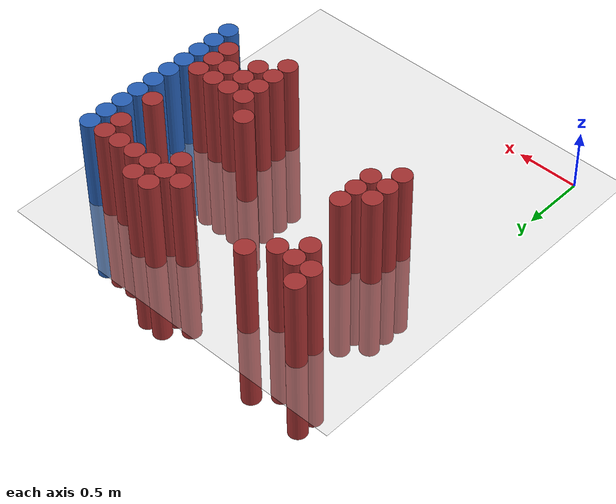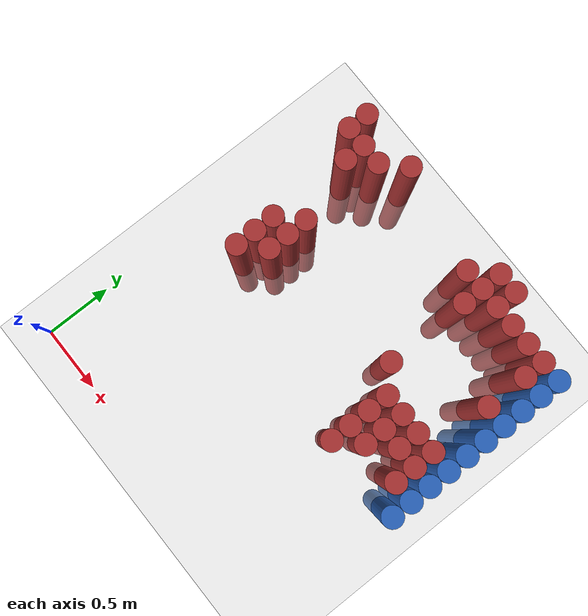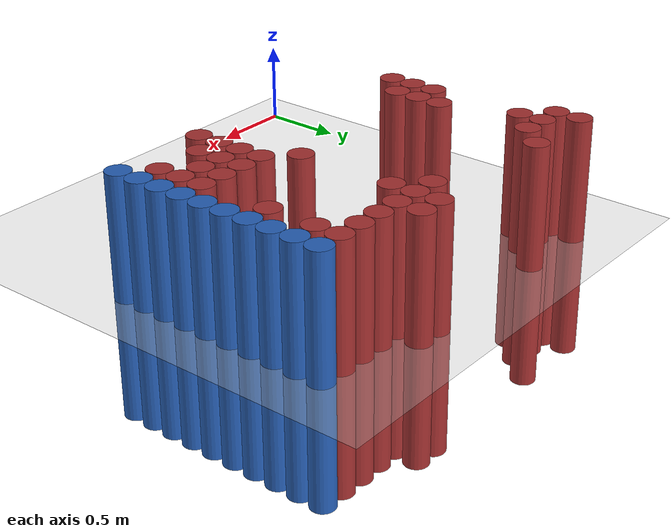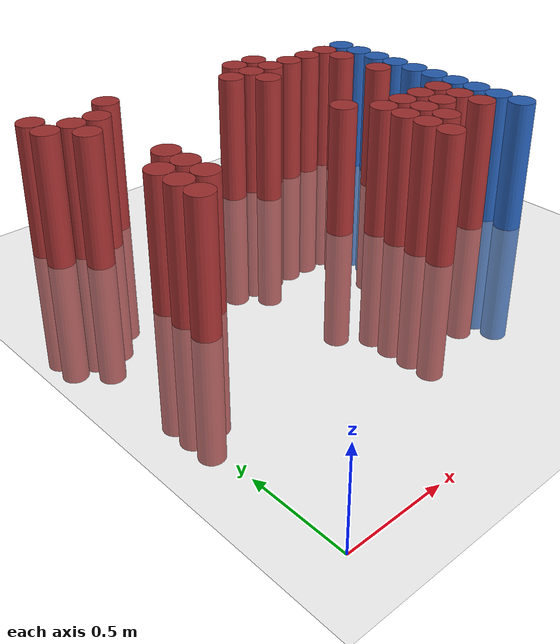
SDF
<sdf version="1.6">
 <world name="default">
  <model name="ground_plane">
   <static>1</static>
   <link name="link">
    <collision name="collision">
     <geometry><plane><normal>0 0 1</normal><size>100 100</size></plane></geometry>
     <surface><friction><ode><mu>100</mu><mu2>50</mu2></ode></friction></surface>
    </collision>
    <visual name="visual">
     <cast_shadows>0</cast_shadows>
     <geometry><plane><normal>0 0 1</normal><size>100 100</size></plane></geometry>
     <material>
      <script><uri>file://media/materials/scripts/gazebo.material</uri><name>Gazebo/Grey</name></script>
     </material>
    </visual>
   </link>
  </model>
  <model name="unit_cylinder_163">
   <static>1</static>
   <pose>0.325000 2.425000 0.000000 0.000000 0.000000 0.000000</pose>
   <link name="link">
    <inertial>
     <mass>1</mass>
     <inertia><ixx>0.145833</ixx><ixy>0</ixy><ixz>0</ixz><iyy>0.145833</iyy><iyz>0</iyz><izz>0.125</izz></inertia>
    </inertial>
    <collision name="collision">
     <geometry><cylinder><radius>0.075000</radius><length>1.5</length></cylinder></geometry>
    </collision>
    <visual name="visual">
     <geometry><cylinder><radius>0.075000</radius><length>1.5</length></cylinder></geometry>
     <material>
      <ambient>0.648000 0.192000 0.192000 1</ambient>
      <diffuse>0.648000 0.192000 0.192000 1</diffuse>
     </material>
     <material>
      <script><name>Gazebo/Grey</name><uri>file://media/materials/scripts/gazebo.material</uri></script>
     </material>
    </visual>
   </link>
  </model>
  <model name="unit_cylinder_164">
   <static>1</static>
   <pose>0.325000 2.575000 0.000000 0.000000 0.000000 0.000000</pose>
   <link name="link">
    <inertial>
     <mass>1</mass>
     <inertia><ixx>0.145833</ixx><ixy>0</ixy><ixz>0</ixz><iyy>0.145833</iyy><iyz>0</iyz><izz>0.125</izz></inertia>
    </inertial>
    <collision name="collision">
     <geometry><cylinder><radius>0.075000</radius><length>1.5</length></cylinder></geometry>
    </collision>
    <visual name="visual">
     <geometry><cylinder><radius>0.075000</radius><length>1.5</length></cylinder></geometry>
     <material>
      <ambient>0.648000 0.192000 0.192000 1</ambient>
      <diffuse>0.648000 0.192000 0.192000 1</diffuse>
     </material>
     <material>
      <script><name>Gazebo/Grey</name><uri>file://media/materials/scripts/gazebo.material</uri></script>
     </material>
    </visual>
   </link>
  </model>
  <model name="unit_cylinder_167">
   <static>1</static>
   <pose>0.475000 1.375000 0.000000 0.000000 0.000000 0.000000</pose>
   <link name="link">
    <inertial>
     <mass>1</mass>
     <inertia><ixx>0.145833</ixx><ixy>0</ixy><ixz>0</ixz><iyy>0.145833</iyy><iyz>0</iyz><izz>0.125</izz></inertia>
    </inertial>
    <collision name="collision">
     <geometry><cylinder><radius>0.075000</radius><length>1.5</length></cylinder></geometry>
    </collision>
    <visual name="visual">
     <geometry><cylinder><radius>0.075000</radius><length>1.5</length></cylinder></geometry>
     <material>
      <ambient>0.648000 0.192000 0.192000 1</ambient>
      <diffuse>0.648000 0.192000 0.192000 1</diffuse>
     </material>
     <material>
      <script><name>Gazebo/Grey</name><uri>file://media/materials/scripts/gazebo.material</uri></script>
     </material>
    </visual>
   </link>
  </model>
  <model name="unit_cylinder_168">
   <static>1</static>
   <pose>0.475000 1.525000 0.000000 0.000000 0.000000 0.000000</pose>
   <link name="link">
    <inertial>
     <mass>1</mass>
     <inertia><ixx>0.145833</ixx><ixy>0</ixy><ixz>0</ixz><iyy>0.145833</iyy><iyz>0</iyz><izz>0.125</izz></inertia>
    </inertial>
    <collision name="collision">
     <geometry><cylinder><radius>0.075000</radius><length>1.5</length></cylinder></geometry>
    </collision>
    <visual name="visual">
     <geometry><cylinder><radius>0.075000</radius><length>1.5</length></cylinder></geometry>
     <material>
      <ambient>0.648000 0.192000 0.192000 1</ambient>
      <diffuse>0.648000 0.192000 0.192000 1</diffuse>
     </material>
     <material>
      <script><name>Gazebo/Grey</name><uri>file://media/materials/scripts/gazebo.material</uri></script>
     </material>
    </visual>
   </link>
  </model>
  <model name="unit_cylinder_169">
   <static>1</static>
   <pose>0.475000 1.675000 0.000000 0.000000 0.000000 0.000000</pose>
   <link name="link">
    <inertial>
     <mass>1</mass>
     <inertia><ixx>0.145833</ixx><ixy>0</ixy><ixz>0</ixz><iyy>0.145833</iyy><iyz>0</iyz><izz>0.125</izz></inertia>
    </inertial>
    <collision name="collision">
     <geometry><cylinder><radius>0.075000</radius><length>1.5</length></cylinder></geometry>
    </collision>
    <visual name="visual">
     <geometry><cylinder><radius>0.075000</radius><length>1.5</length></cylinder></geometry>
     <material>
      <ambient>0.648000 0.192000 0.192000 1</ambient>
      <diffuse>0.648000 0.192000 0.192000 1</diffuse>
     </material>
     <material>
      <script><name>Gazebo/Grey</name><uri>file://media/materials/scripts/gazebo.material</uri></script>
     </material>
    </visual>
   </link>
  </model>
  <model name="unit_cylinder_170">
   <static>1</static>
   <pose>0.475000 2.275000 0.000000 0.000000 0.000000 0.000000</pose>
   <link name="link">
    <inertial>
     <mass>1</mass>
     <inertia><ixx>0.145833</ixx><ixy>0</ixy><ixz>0</ixz><iyy>0.145833</iyy><iyz>0</iyz><izz>0.125</izz></inertia>
    </inertial>
    <collision name="collision">
     <geometry><cylinder><radius>0.075000</radius><length>1.5</length></cylinder></geometry>
    </collision>
    <visual name="visual">
     <geometry><cylinder><radius>0.075000</radius><length>1.5</length></cylinder></geometry>
     <material>
      <ambient>0.648000 0.192000 0.192000 1</ambient>
      <diffuse>0.648000 0.192000 0.192000 1</diffuse>
     </material>
     <material>
      <script><name>Gazebo/Grey</name><uri>file://media/materials/scripts/gazebo.material</uri></script>
     </material>
    </visual>
   </link>
  </model>
  <model name="unit_cylinder_171">
   <static>1</static>
   <pose>0.475000 2.425000 0.000000 0.000000 0.000000 0.000000</pose>
   <link name="link">
    <inertial>
     <mass>1</mass>
     <inertia><ixx>0.145833</ixx><ixy>0</ixy><ixz>0</ixz><iyy>0.145833</iyy><iyz>0</iyz><izz>0.125</izz></inertia>
    </inertial>
    <collision name="collision">
     <geometry><cylinder><radius>0.075000</radius><length>1.5</length></cylinder></geometry>
    </collision>
    <visual name="visual">
     <geometry><cylinder><radius>0.075000</radius><length>1.5</length></cylinder></geometry>
     <material>
      <ambient>0.648000 0.192000 0.192000 1</ambient>
      <diffuse>0.648000 0.192000 0.192000 1</diffuse>
     </material>
     <material>
      <script><name>Gazebo/Grey</name><uri>file://media/materials/scripts/gazebo.material</uri></script>
     </material>
    </visual>
   </link>
  </model>
  <model name="unit_cylinder_172">
   <static>1</static>
   <pose>0.625000 1.525000 0.000000 0.000000 0.000000 0.000000</pose>
   <link name="link">
    <inertial>
     <mass>1</mass>
     <inertia><ixx>0.145833</ixx><ixy>0</ixy><ixz>0</ixz><iyy>0.145833</iyy><iyz>0</iyz><izz>0.125</izz></inertia>
    </inertial>
    <collision name="collision">
     <geometry><cylinder><radius>0.075000</radius><length>1.5</length></cylinder></geometry>
    </collision>
    <visual name="visual">
     <geometry><cylinder><radius>0.075000</radius><length>1.5</length></cylinder></geometry>
     <material>
      <ambient>0.648000 0.192000 0.192000 1</ambient>
      <diffuse>0.648000 0.192000 0.192000 1</diffuse>
     </material>
     <material>
      <script><name>Gazebo/Grey</name><uri>file://media/materials/scripts/gazebo.material</uri></script>
     </material>
    </visual>
   </link>
  </model>
  <model name="unit_cylinder_173">
   <static>1</static>
   <pose>0.625000 1.675000 0.000000 0.000000 0.000000 0.000000</pose>
   <link name="link">
    <inertial>
     <mass>1</mass>
     <inertia><ixx>0.145833</ixx><ixy>0</ixy><ixz>0</ixz><iyy>0.145833</iyy><iyz>0</iyz><izz>0.125</izz></inertia>
    </inertial>
    <collision name="collision">
     <geometry><cylinder><radius>0.075000</radius><length>1.5</length></cylinder></geometry>
    </collision>
    <visual name="visual">
     <geometry><cylinder><radius>0.075000</radius><length>1.5</length></cylinder></geometry>
     <material>
      <ambient>0.648000 0.192000 0.192000 1</ambient>
      <diffuse>0.648000 0.192000 0.192000 1</diffuse>
     </material>
     <material>
      <script><name>Gazebo/Grey</name><uri>file://media/materials/scripts/gazebo.material</uri></script>
     </material>
    </visual>
   </link>
  </model>
  <model name="unit_cylinder_174">
   <static>1</static>
   <pose>0.625000 1.825000 0.000000 0.000000 0.000000 0.000000</pose>
   <link name="link">
    <inertial>
     <mass>1</mass>
     <inertia><ixx>0.145833</ixx><ixy>0</ixy><ixz>0</ixz><iyy>0.145833</iyy><iyz>0</iyz><izz>0.125</izz></inertia>
    </inertial>
    <collision name="collision">
     <geometry><cylinder><radius>0.075000</radius><length>1.5</length></cylinder></geometry>
    </collision>
    <visual name="visual">
     <geometry><cylinder><radius>0.075000</radius><length>1.5</length></cylinder></geometry>
     <material>
      <ambient>0.648000 0.192000 0.192000 1</ambient>
      <diffuse>0.648000 0.192000 0.192000 1</diffuse>
     </material>
     <material>
      <script><name>Gazebo/Grey</name><uri>file://media/materials/scripts/gazebo.material</uri></script>
     </material>
    </visual>
   </link>
  </model>
  <model name="unit_cylinder_175">
   <static>1</static>
   <pose>0.625000 2.425000 0.000000 0.000000 0.000000 0.000000</pose>
   <link name="link">
    <inertial>
     <mass>1</mass>
     <inertia><ixx>0.145833</ixx><ixy>0</ixy><ixz>0</ixz><iyy>0.145833</iyy><iyz>0</iyz><izz>0.125</izz></inertia>
    </inertial>
    <collision name="collision">
     <geometry><cylinder><radius>0.075000</radius><length>1.5</length></cylinder></geometry>
    </collision>
    <visual name="visual">
     <geometry><cylinder><radius>0.075000</radius><length>1.5</length></cylinder></geometry>
     <material>
      <ambient>0.648000 0.192000 0.192000 1</ambient>
      <diffuse>0.648000 0.192000 0.192000 1</diffuse>
     </material>
     <material>
      <script><name>Gazebo/Grey</name><uri>file://media/materials/scripts/gazebo.material</uri></script>
     </material>
    </visual>
   </link>
  </model>
  <model name="unit_cylinder_176">
   <static>1</static>
   <pose>0.775000 2.575000 0.000000 0.000000 0.000000 0.000000</pose>
   <link name="link">
    <inertial>
     <mass>1</mass>
     <inertia><ixx>0.145833</ixx><ixy>0</ixy><ixz>0</ixz><iyy>0.145833</iyy><iyz>0</iyz><izz>0.125</izz></inertia>
    </inertial>
    <collision name="collision">
     <geometry><cylinder><radius>0.075000</radius><length>1.5</length></cylinder></geometry>
    </collision>
    <visual name="visual">
     <geometry><cylinder><radius>0.075000</radius><length>1.5</length></cylinder></geometry>
     <material>
      <ambient>0.648000 0.192000 0.192000 1</ambient>
      <diffuse>0.648000 0.192000 0.192000 1</diffuse>
     </material>
     <material>
      <script><name>Gazebo/Grey</name><uri>file://media/materials/scripts/gazebo.material</uri></script>
     </material>
    </visual>
   </link>
  </model>
  <model name="unit_cylinder_191">
   <static>1</static>
   <pose>1.525000 2.425000 0.000000 0.000000 0.000000 0.000000</pose>
   <link name="link">
    <inertial>
     <mass>1</mass>
     <inertia><ixx>0.145833</ixx><ixy>0</ixy><ixz>0</ixz><iyy>0.145833</iyy><iyz>0</iyz><izz>0.125</izz></inertia>
    </inertial>
    <collision name="collision">
     <geometry><cylinder><radius>0.075000</radius><length>1.5</length></cylinder></geometry>
    </collision>
    <visual name="visual">
     <geometry><cylinder><radius>0.075000</radius><length>1.5</length></cylinder></geometry>
     <material>
      <ambient>0.648000 0.192000 0.192000 1</ambient>
      <diffuse>0.648000 0.192000 0.192000 1</diffuse>
     </material>
     <material>
      <script><name>Gazebo/Grey</name><uri>file://media/materials/scripts/gazebo.material</uri></script>
     </material>
    </visual>
   </link>
  </model>
  <model name="unit_cylinder_195">
   <static>1</static>
   <pose>1.675000 1.675000 0.000000 0.000000 0.000000 0.000000</pose>
   <link name="link">
    <inertial>
     <mass>1</mass>
     <inertia><ixx>0.145833</ixx><ixy>0</ixy><ixz>0</ixz><iyy>0.145833</iyy><iyz>0</iyz><izz>0.125</izz></inertia>
    </inertial>
    <collision name="collision">
     <geometry><cylinder><radius>0.075000</radius><length>1.5</length></cylinder></geometry>
    </collision>
    <visual name="visual">
     <geometry><cylinder><radius>0.075000</radius><length>1.5</length></cylinder></geometry>
     <material>
      <ambient>0.648000 0.192000 0.192000 1</ambient>
      <diffuse>0.648000 0.192000 0.192000 1</diffuse>
     </material>
     <material>
      <script><name>Gazebo/Grey</name><uri>file://media/materials/scripts/gazebo.material</uri></script>
     </material>
    </visual>
   </link>
  </model>
  <model name="unit_cylinder_196">
   <static>1</static>
   <pose>1.675000 2.275000 0.000000 0.000000 0.000000 0.000000</pose>
   <link name="link">
    <inertial>
     <mass>1</mass>
     <inertia><ixx>0.145833</ixx><ixy>0</ixy><ixz>0</ixz><iyy>0.145833</iyy><iyz>0</iyz><izz>0.125</izz></inertia>
    </inertial>
    <collision name="collision">
     <geometry><cylinder><radius>0.075000</radius><length>1.5</length></cylinder></geometry>
    </collision>
    <visual name="visual">
     <geometry><cylinder><radius>0.075000</radius><length>1.5</length></cylinder></geometry>
     <material>
      <ambient>0.648000 0.192000 0.192000 1</ambient>
      <diffuse>0.648000 0.192000 0.192000 1</diffuse>
     </material>
     <material>
      <script><name>Gazebo/Grey</name><uri>file://media/materials/scripts/gazebo.material</uri></script>
     </material>
    </visual>
   </link>
  </model>
  <model name="unit_cylinder_197">
   <static>1</static>
   <pose>1.675000 2.425000 0.000000 0.000000 0.000000 0.000000</pose>
   <link name="link">
    <inertial>
     <mass>1</mass>
     <inertia><ixx>0.145833</ixx><ixy>0</ixy><ixz>0</ixz><iyy>0.145833</iyy><iyz>0</iyz><izz>0.125</izz></inertia>
    </inertial>
    <collision name="collision">
     <geometry><cylinder><radius>0.075000</radius><length>1.5</length></cylinder></geometry>
    </collision>
    <visual name="visual">
     <geometry><cylinder><radius>0.075000</radius><length>1.5</length></cylinder></geometry>
     <material>
      <ambient>0.648000 0.192000 0.192000 1</ambient>
      <diffuse>0.648000 0.192000 0.192000 1</diffuse>
     </material>
     <material>
      <script><name>Gazebo/Grey</name><uri>file://media/materials/scripts/gazebo.material</uri></script>
     </material>
    </visual>
   </link>
  </model>
  <model name="unit_cylinder_198">
   <static>1</static>
   <pose>1.675000 2.575000 0.000000 0.000000 0.000000 0.000000</pose>
   <link name="link">
    <inertial>
     <mass>1</mass>
     <inertia><ixx>0.145833</ixx><ixy>0</ixy><ixz>0</ixz><iyy>0.145833</iyy><iyz>0</iyz><izz>0.125</izz></inertia>
    </inertial>
    <collision name="collision">
     <geometry><cylinder><radius>0.075000</radius><length>1.5</length></cylinder></geometry>
    </collision>
    <visual name="visual">
     <geometry><cylinder><radius>0.075000</radius><length>1.5</length></cylinder></geometry>
     <material>
      <ambient>0.648000 0.192000 0.192000 1</ambient>
      <diffuse>0.648000 0.192000 0.192000 1</diffuse>
     </material>
     <material>
      <script><name>Gazebo/Grey</name><uri>file://media/materials/scripts/gazebo.material</uri></script>
     </material>
    </visual>
   </link>
  </model>
  <model name="unit_cylinder_205">
   <static>1</static>
   <pose>1.825000 1.075000 0.000000 0.000000 0.000000 0.000000</pose>
   <link name="link">
    <inertial>
     <mass>1</mass>
     <inertia><ixx>0.145833</ixx><ixy>0</ixy><ixz>0</ixz><iyy>0.145833</iyy><iyz>0</iyz><izz>0.125</izz></inertia>
    </inertial>
    <collision name="collision">
     <geometry><cylinder><radius>0.075000</radius><length>1.5</length></cylinder></geometry>
    </collision>
    <visual name="visual">
     <geometry><cylinder><radius>0.075000</radius><length>1.5</length></cylinder></geometry>
     <material>
      <ambient>0.648000 0.192000 0.192000 1</ambient>
      <diffuse>0.648000 0.192000 0.192000 1</diffuse>
     </material>
     <material>
      <script><name>Gazebo/Grey</name><uri>file://media/materials/scripts/gazebo.material</uri></script>
     </material>
    </visual>
   </link>
  </model>
  <model name="unit_cylinder_206">
   <static>1</static>
   <pose>1.825000 1.225000 0.000000 0.000000 0.000000 0.000000</pose>
   <link name="link">
    <inertial>
     <mass>1</mass>
     <inertia><ixx>0.145833</ixx><ixy>0</ixy><ixz>0</ixz><iyy>0.145833</iyy><iyz>0</iyz><izz>0.125</izz></inertia>
    </inertial>
    <collision name="collision">
     <geometry><cylinder><radius>0.075000</radius><length>1.5</length></cylinder></geometry>
    </collision>
    <visual name="visual">
     <geometry><cylinder><radius>0.075000</radius><length>1.5</length></cylinder></geometry>
     <material>
      <ambient>0.648000 0.192000 0.192000 1</ambient>
      <diffuse>0.648000 0.192000 0.192000 1</diffuse>
     </material>
     <material>
      <script><name>Gazebo/Grey</name><uri>file://media/materials/scripts/gazebo.material</uri></script>
     </material>
    </visual>
   </link>
  </model>
  <model name="unit_cylinder_207">
   <static>1</static>
   <pose>1.825000 1.375000 0.000000 0.000000 0.000000 0.000000</pose>
   <link name="link">
    <inertial>
     <mass>1</mass>
     <inertia><ixx>0.145833</ixx><ixy>0</ixy><ixz>0</ixz><iyy>0.145833</iyy><iyz>0</iyz><izz>0.125</izz></inertia>
    </inertial>
    <collision name="collision">
     <geometry><cylinder><radius>0.075000</radius><length>1.5</length></cylinder></geometry>
    </collision>
    <visual name="visual">
     <geometry><cylinder><radius>0.075000</radius><length>1.5</length></cylinder></geometry>
     <material>
      <ambient>0.648000 0.192000 0.192000 1</ambient>
      <diffuse>0.648000 0.192000 0.192000 1</diffuse>
     </material>
     <material>
      <script><name>Gazebo/Grey</name><uri>file://media/materials/scripts/gazebo.material</uri></script>
     </material>
    </visual>
   </link>
  </model>
  <model name="unit_cylinder_208">
   <static>1</static>
   <pose>1.825000 1.525000 0.000000 0.000000 0.000000 0.000000</pose>
   <link name="link">
    <inertial>
     <mass>1</mass>
     <inertia><ixx>0.145833</ixx><ixy>0</ixy><ixz>0</ixz><iyy>0.145833</iyy><iyz>0</iyz><izz>0.125</izz></inertia>
    </inertial>
    <collision name="collision">
     <geometry><cylinder><radius>0.075000</radius><length>1.5</length></cylinder></geometry>
    </collision>
    <visual name="visual">
     <geometry><cylinder><radius>0.075000</radius><length>1.5</length></cylinder></geometry>
     <material>
      <ambient>0.648000 0.192000 0.192000 1</ambient>
      <diffuse>0.648000 0.192000 0.192000 1</diffuse>
     </material>
     <material>
      <script><name>Gazebo/Grey</name><uri>file://media/materials/scripts/gazebo.material</uri></script>
     </material>
    </visual>
   </link>
  </model>
  <model name="unit_cylinder_209">
   <static>1</static>
   <pose>1.825000 2.425000 0.000000 0.000000 0.000000 0.000000</pose>
   <link name="link">
    <inertial>
     <mass>1</mass>
     <inertia><ixx>0.145833</ixx><ixy>0</ixy><ixz>0</ixz><iyy>0.145833</iyy><iyz>0</iyz><izz>0.125</izz></inertia>
    </inertial>
    <collision name="collision">
     <geometry><cylinder><radius>0.075000</radius><length>1.5</length></cylinder></geometry>
    </collision>
    <visual name="visual">
     <geometry><cylinder><radius>0.075000</radius><length>1.5</length></cylinder></geometry>
     <material>
      <ambient>0.648000 0.192000 0.192000 1</ambient>
      <diffuse>0.648000 0.192000 0.192000 1</diffuse>
     </material>
     <material>
      <script><name>Gazebo/Grey</name><uri>file://media/materials/scripts/gazebo.material</uri></script>
     </material>
    </visual>
   </link>
  </model>
  <model name="unit_cylinder_210">
   <static>1</static>
   <pose>1.825000 2.575000 0.000000 0.000000 0.000000 0.000000</pose>
   <link name="link">
    <inertial>
     <mass>1</mass>
     <inertia><ixx>0.145833</ixx><ixy>0</ixy><ixz>0</ixz><iyy>0.145833</iyy><iyz>0</iyz><izz>0.125</izz></inertia>
    </inertial>
    <collision name="collision">
     <geometry><cylinder><radius>0.075000</radius><length>1.5</length></cylinder></geometry>
    </collision>
    <visual name="visual">
     <geometry><cylinder><radius>0.075000</radius><length>1.5</length></cylinder></geometry>
     <material>
      <ambient>0.648000 0.192000 0.192000 1</ambient>
      <diffuse>0.648000 0.192000 0.192000 1</diffuse>
     </material>
     <material>
      <script><name>Gazebo/Grey</name><uri>file://media/materials/scripts/gazebo.material</uri></script>
     </material>
    </visual>
   </link>
  </model>
  <model name="unit_cylinder_214">
   <static>1</static>
   <pose>1.975000 1.225000 0.000000 0.000000 0.000000 0.000000</pose>
   <link name="link">
    <inertial>
     <mass>1</mass>
     <inertia><ixx>0.145833</ixx><ixy>0</ixy><ixz>0</ixz><iyy>0.145833</iyy><iyz>0</iyz><izz>0.125</izz></inertia>
    </inertial>
    <collision name="collision">
     <geometry><cylinder><radius>0.075000</radius><length>1.5</length></cylinder></geometry>
    </collision>
    <visual name="visual">
     <geometry><cylinder><radius>0.075000</radius><length>1.5</length></cylinder></geometry>
     <material>
      <ambient>0.648000 0.192000 0.192000 1</ambient>
      <diffuse>0.648000 0.192000 0.192000 1</diffuse>
     </material>
     <material>
      <script><name>Gazebo/Grey</name><uri>file://media/materials/scripts/gazebo.material</uri></script>
     </material>
    </visual>
   </link>
  </model>
  <model name="unit_cylinder_215">
   <static>1</static>
   <pose>1.975000 1.375000 0.000000 0.000000 0.000000 0.000000</pose>
   <link name="link">
    <inertial>
     <mass>1</mass>
     <inertia><ixx>0.145833</ixx><ixy>0</ixy><ixz>0</ixz><iyy>0.145833</iyy><iyz>0</iyz><izz>0.125</izz></inertia>
    </inertial>
    <collision name="collision">
     <geometry><cylinder><radius>0.075000</radius><length>1.5</length></cylinder></geometry>
    </collision>
    <visual name="visual">
     <geometry><cylinder><radius>0.075000</radius><length>1.5</length></cylinder></geometry>
     <material>
      <ambient>0.648000 0.192000 0.192000 1</ambient>
      <diffuse>0.648000 0.192000 0.192000 1</diffuse>
     </material>
     <material>
      <script><name>Gazebo/Grey</name><uri>file://media/materials/scripts/gazebo.material</uri></script>
     </material>
    </visual>
   </link>
  </model>
  <model name="unit_cylinder_216">
   <static>1</static>
   <pose>1.975000 1.525000 0.000000 0.000000 0.000000 0.000000</pose>
   <link name="link">
    <inertial>
     <mass>1</mass>
     <inertia><ixx>0.145833</ixx><ixy>0</ixy><ixz>0</ixz><iyy>0.145833</iyy><iyz>0</iyz><izz>0.125</izz></inertia>
    </inertial>
    <collision name="collision">
     <geometry><cylinder><radius>0.075000</radius><length>1.5</length></cylinder></geometry>
    </collision>
    <visual name="visual">
     <geometry><cylinder><radius>0.075000</radius><length>1.5</length></cylinder></geometry>
     <material>
      <ambient>0.648000 0.192000 0.192000 1</ambient>
      <diffuse>0.648000 0.192000 0.192000 1</diffuse>
     </material>
     <material>
      <script><name>Gazebo/Grey</name><uri>file://media/materials/scripts/gazebo.material</uri></script>
     </material>
    </visual>
   </link>
  </model>
  <model name="unit_cylinder_217">
   <static>1</static>
   <pose>1.975000 2.425000 0.000000 0.000000 0.000000 0.000000</pose>
   <link name="link">
    <inertial>
     <mass>1</mass>
     <inertia><ixx>0.145833</ixx><ixy>0</ixy><ixz>0</ixz><iyy>0.145833</iyy><iyz>0</iyz><izz>0.125</izz></inertia>
    </inertial>
    <collision name="collision">
     <geometry><cylinder><radius>0.075000</radius><length>1.5</length></cylinder></geometry>
    </collision>
    <visual name="visual">
     <geometry><cylinder><radius>0.075000</radius><length>1.5</length></cylinder></geometry>
     <material>
      <ambient>0.648000 0.192000 0.192000 1</ambient>
      <diffuse>0.648000 0.192000 0.192000 1</diffuse>
     </material>
     <material>
      <script><name>Gazebo/Grey</name><uri>file://media/materials/scripts/gazebo.material</uri></script>
     </material>
    </visual>
   </link>
  </model>
  <model name="unit_cylinder_223">
   <static>1</static>
   <pose>2.125000 1.375000 0.000000 0.000000 0.000000 0.000000</pose>
   <link name="link">
    <inertial>
     <mass>1</mass>
     <inertia><ixx>0.145833</ixx><ixy>0</ixy><ixz>0</ixz><iyy>0.145833</iyy><iyz>0</iyz><izz>0.125</izz></inertia>
    </inertial>
    <collision name="collision">
     <geometry><cylinder><radius>0.075000</radius><length>1.5</length></cylinder></geometry>
    </collision>
    <visual name="visual">
     <geometry><cylinder><radius>0.075000</radius><length>1.5</length></cylinder></geometry>
     <material>
      <ambient>0.648000 0.192000 0.192000 1</ambient>
      <diffuse>0.648000 0.192000 0.192000 1</diffuse>
     </material>
     <material>
      <script><name>Gazebo/Grey</name><uri>file://media/materials/scripts/gazebo.material</uri></script>
     </material>
    </visual>
   </link>
  </model>
  <model name="unit_cylinder_224">
   <static>1</static>
   <pose>2.125000 1.525000 0.000000 0.000000 0.000000 0.000000</pose>
   <link name="link">
    <inertial>
     <mass>1</mass>
     <inertia><ixx>0.145833</ixx><ixy>0</ixy><ixz>0</ixz><iyy>0.145833</iyy><iyz>0</iyz><izz>0.125</izz></inertia>
    </inertial>
    <collision name="collision">
     <geometry><cylinder><radius>0.075000</radius><length>1.5</length></cylinder></geometry>
    </collision>
    <visual name="visual">
     <geometry><cylinder><radius>0.075000</radius><length>1.5</length></cylinder></geometry>
     <material>
      <ambient>0.648000 0.192000 0.192000 1</ambient>
      <diffuse>0.648000 0.192000 0.192000 1</diffuse>
     </material>
     <material>
      <script><name>Gazebo/Grey</name><uri>file://media/materials/scripts/gazebo.material</uri></script>
     </material>
    </visual>
   </link>
  </model>
  <model name="unit_cylinder_225">
   <static>1</static>
   <pose>2.125000 2.425000 0.000000 0.000000 0.000000 0.000000</pose>
   <link name="link">
    <inertial>
     <mass>1</mass>
     <inertia><ixx>0.145833</ixx><ixy>0</ixy><ixz>0</ixz><iyy>0.145833</iyy><iyz>0</iyz><izz>0.125</izz></inertia>
    </inertial>
    <collision name="collision">
     <geometry><cylinder><radius>0.075000</radius><length>1.5</length></cylinder></geometry>
    </collision>
    <visual name="visual">
     <geometry><cylinder><radius>0.075000</radius><length>1.5</length></cylinder></geometry>
     <material>
      <ambient>0.648000 0.192000 0.192000 1</ambient>
      <diffuse>0.648000 0.192000 0.192000 1</diffuse>
     </material>
     <material>
      <script><name>Gazebo/Grey</name><uri>file://media/materials/scripts/gazebo.material</uri></script>
     </material>
    </visual>
   </link>
  </model>
  <model name="unit_cylinder_230">
   <static>1</static>
   <pose>2.275000 1.225000 0.000000 0.000000 0.000000 0.000000</pose>
   <link name="link">
    <inertial>
     <mass>1</mass>
     <inertia><ixx>0.145833</ixx><ixy>0</ixy><ixz>0</ixz><iyy>0.145833</iyy><iyz>0</iyz><izz>0.125</izz></inertia>
    </inertial>
    <collision name="collision">
     <geometry><cylinder><radius>0.075000</radius><length>1.5</length></cylinder></geometry>
    </collision>
    <visual name="visual">
     <geometry><cylinder><radius>0.075000</radius><length>1.5</length></cylinder></geometry>
     <material>
      <ambient>0.648000 0.192000 0.192000 1</ambient>
      <diffuse>0.648000 0.192000 0.192000 1</diffuse>
     </material>
     <material>
      <script><name>Gazebo/Grey</name><uri>file://media/materials/scripts/gazebo.material</uri></script>
     </material>
    </visual>
   </link>
  </model>
  <model name="unit_cylinder_231">
   <static>1</static>
   <pose>2.275000 1.375000 0.000000 0.000000 0.000000 0.000000</pose>
   <link name="link">
    <inertial>
     <mass>1</mass>
     <inertia><ixx>0.145833</ixx><ixy>0</ixy><ixz>0</ixz><iyy>0.145833</iyy><iyz>0</iyz><izz>0.125</izz></inertia>
    </inertial>
    <collision name="collision">
     <geometry><cylinder><radius>0.075000</radius><length>1.5</length></cylinder></geometry>
    </collision>
    <visual name="visual">
     <geometry><cylinder><radius>0.075000</radius><length>1.5</length></cylinder></geometry>
     <material>
      <ambient>0.648000 0.192000 0.192000 1</ambient>
      <diffuse>0.648000 0.192000 0.192000 1</diffuse>
     </material>
     <material>
      <script><name>Gazebo/Grey</name><uri>file://media/materials/scripts/gazebo.material</uri></script>
     </material>
    </visual>
   </link>
  </model>
  <model name="unit_cylinder_232">
   <static>1</static>
   <pose>2.275000 1.525000 0.000000 0.000000 0.000000 0.000000</pose>
   <link name="link">
    <inertial>
     <mass>1</mass>
     <inertia><ixx>0.145833</ixx><ixy>0</ixy><ixz>0</ixz><iyy>0.145833</iyy><iyz>0</iyz><izz>0.125</izz></inertia>
    </inertial>
    <collision name="collision">
     <geometry><cylinder><radius>0.075000</radius><length>1.5</length></cylinder></geometry>
    </collision>
    <visual name="visual">
     <geometry><cylinder><radius>0.075000</radius><length>1.5</length></cylinder></geometry>
     <material>
      <ambient>0.648000 0.192000 0.192000 1</ambient>
      <diffuse>0.648000 0.192000 0.192000 1</diffuse>
     </material>
     <material>
      <script><name>Gazebo/Grey</name><uri>file://media/materials/scripts/gazebo.material</uri></script>
     </material>
    </visual>
   </link>
  </model>
  <model name="unit_cylinder_233">
   <static>1</static>
   <pose>2.275000 1.975000 0.000000 0.000000 0.000000 0.000000</pose>
   <link name="link">
    <inertial>
     <mass>1</mass>
     <inertia><ixx>0.145833</ixx><ixy>0</ixy><ixz>0</ixz><iyy>0.145833</iyy><iyz>0</iyz><izz>0.125</izz></inertia>
    </inertial>
    <collision name="collision">
     <geometry><cylinder><radius>0.075000</radius><length>1.5</length></cylinder></geometry>
    </collision>
    <visual name="visual">
     <geometry><cylinder><radius>0.075000</radius><length>1.5</length></cylinder></geometry>
     <material>
      <ambient>0.648000 0.192000 0.192000 1</ambient>
      <diffuse>0.648000 0.192000 0.192000 1</diffuse>
     </material>
     <material>
      <script><name>Gazebo/Grey</name><uri>file://media/materials/scripts/gazebo.material</uri></script>
     </material>
    </visual>
   </link>
  </model>
  <model name="unit_cylinder_234">
   <static>1</static>
   <pose>2.275000 2.275000 0.000000 0.000000 0.000000 0.000000</pose>
   <link name="link">
    <inertial>
     <mass>1</mass>
     <inertia><ixx>0.145833</ixx><ixy>0</ixy><ixz>0</ixz><iyy>0.145833</iyy><iyz>0</iyz><izz>0.125</izz></inertia>
    </inertial>
    <collision name="collision">
     <geometry><cylinder><radius>0.075000</radius><length>1.5</length></cylinder></geometry>
    </collision>
    <visual name="visual">
     <geometry><cylinder><radius>0.075000</radius><length>1.5</length></cylinder></geometry>
     <material>
      <ambient>0.648000 0.192000 0.192000 1</ambient>
      <diffuse>0.648000 0.192000 0.192000 1</diffuse>
     </material>
     <material>
      <script><name>Gazebo/Grey</name><uri>file://media/materials/scripts/gazebo.material</uri></script>
     </material>
    </visual>
   </link>
  </model>
  <model name="unit_cylinder_235">
   <static>1</static>
   <pose>2.275000 2.425000 0.000000 0.000000 0.000000 0.000000</pose>
   <link name="link">
    <inertial>
     <mass>1</mass>
     <inertia><ixx>0.145833</ixx><ixy>0</ixy><ixz>0</ixz><iyy>0.145833</iyy><iyz>0</iyz><izz>0.125</izz></inertia>
    </inertial>
    <collision name="collision">
     <geometry><cylinder><radius>0.075000</radius><length>1.5</length></cylinder></geometry>
    </collision>
    <visual name="visual">
     <geometry><cylinder><radius>0.075000</radius><length>1.5</length></cylinder></geometry>
     <material>
      <ambient>0.648000 0.192000 0.192000 1</ambient>
      <diffuse>0.648000 0.192000 0.192000 1</diffuse>
     </material>
     <material>
      <script><name>Gazebo/Grey</name><uri>file://media/materials/scripts/gazebo.material</uri></script>
     </material>
    </visual>
   </link>
  </model>
  <model name="unit_cylinder_254">
   <static>1</static>
   <pose>2.425000 1.075000 0.000000 0.000000 0.000000 0.000000</pose>
   <link name="link">
    <inertial>
     <mass>1</mass>
     <inertia><ixx>0.145833</ixx><ixy>0</ixy><ixz>0</ixz><iyy>0.145833</iyy><iyz>0</iyz><izz>0.125</izz></inertia>
    </inertial>
    <collision name="collision">
     <geometry><cylinder><radius>0.075000</radius><length>1.5</length></cylinder></geometry>
    </collision>
    <visual name="visual">
     <geometry><cylinder><radius>0.075000</radius><length>1.5</length></cylinder></geometry>
     <material>
      <ambient>0.152000 0.379000 0.720000 1</ambient>
      <diffuse>0.152000 0.379000 0.720000 1</diffuse>
     </material>
     <material>
      <script><name>Gazebo/Grey</name><uri>file://media/materials/scripts/gazebo.material</uri></script>
     </material>
    </visual>
   </link>
  </model>
  <model name="unit_cylinder_255">
   <static>1</static>
   <pose>2.425000 1.225000 0.000000 0.000000 0.000000 0.000000</pose>
   <link name="link">
    <inertial>
     <mass>1</mass>
     <inertia><ixx>0.145833</ixx><ixy>0</ixy><ixz>0</ixz><iyy>0.145833</iyy><iyz>0</iyz><izz>0.125</izz></inertia>
    </inertial>
    <collision name="collision">
     <geometry><cylinder><radius>0.075000</radius><length>1.5</length></cylinder></geometry>
    </collision>
    <visual name="visual">
     <geometry><cylinder><radius>0.075000</radius><length>1.5</length></cylinder></geometry>
     <material>
      <ambient>0.152000 0.379000 0.720000 1</ambient>
      <diffuse>0.152000 0.379000 0.720000 1</diffuse>
     </material>
     <material>
      <script><name>Gazebo/Grey</name><uri>file://media/materials/scripts/gazebo.material</uri></script>
     </material>
    </visual>
   </link>
  </model>
  <model name="unit_cylinder_256">
   <static>1</static>
   <pose>2.425000 1.375000 0.000000 0.000000 0.000000 0.000000</pose>
   <link name="link">
    <inertial>
     <mass>1</mass>
     <inertia><ixx>0.145833</ixx><ixy>0</ixy><ixz>0</ixz><iyy>0.145833</iyy><iyz>0</iyz><izz>0.125</izz></inertia>
    </inertial>
    <collision name="collision">
     <geometry><cylinder><radius>0.075000</radius><length>1.5</length></cylinder></geometry>
    </collision>
    <visual name="visual">
     <geometry><cylinder><radius>0.075000</radius><length>1.5</length></cylinder></geometry>
     <material>
      <ambient>0.152000 0.379000 0.720000 1</ambient>
      <diffuse>0.152000 0.379000 0.720000 1</diffuse>
     </material>
     <material>
      <script><name>Gazebo/Grey</name><uri>file://media/materials/scripts/gazebo.material</uri></script>
     </material>
    </visual>
   </link>
  </model>
  <model name="unit_cylinder_257">
   <static>1</static>
   <pose>2.425000 1.525000 0.000000 0.000000 0.000000 0.000000</pose>
   <link name="link">
    <inertial>
     <mass>1</mass>
     <inertia><ixx>0.145833</ixx><ixy>0</ixy><ixz>0</ixz><iyy>0.145833</iyy><iyz>0</iyz><izz>0.125</izz></inertia>
    </inertial>
    <collision name="collision">
     <geometry><cylinder><radius>0.075000</radius><length>1.5</length></cylinder></geometry>
    </collision>
    <visual name="visual">
     <geometry><cylinder><radius>0.075000</radius><length>1.5</length></cylinder></geometry>
     <material>
      <ambient>0.152000 0.379000 0.720000 1</ambient>
      <diffuse>0.152000 0.379000 0.720000 1</diffuse>
     </material>
     <material>
      <script><name>Gazebo/Grey</name><uri>file://media/materials/scripts/gazebo.material</uri></script>
     </material>
    </visual>
   </link>
  </model>
  <model name="unit_cylinder_258">
   <static>1</static>
   <pose>2.425000 1.675000 0.000000 0.000000 0.000000 0.000000</pose>
   <link name="link">
    <inertial>
     <mass>1</mass>
     <inertia><ixx>0.145833</ixx><ixy>0</ixy><ixz>0</ixz><iyy>0.145833</iyy><iyz>0</iyz><izz>0.125</izz></inertia>
    </inertial>
    <collision name="collision">
     <geometry><cylinder><radius>0.075000</radius><length>1.5</length></cylinder></geometry>
    </collision>
    <visual name="visual">
     <geometry><cylinder><radius>0.075000</radius><length>1.5</length></cylinder></geometry>
     <material>
      <ambient>0.152000 0.379000 0.720000 1</ambient>
      <diffuse>0.152000 0.379000 0.720000 1</diffuse>
     </material>
     <material>
      <script><name>Gazebo/Grey</name><uri>file://media/materials/scripts/gazebo.material</uri></script>
     </material>
    </visual>
   </link>
  </model>
  <model name="unit_cylinder_259">
   <static>1</static>
   <pose>2.425000 1.825000 0.000000 0.000000 0.000000 0.000000</pose>
   <link name="link">
    <inertial>
     <mass>1</mass>
     <inertia><ixx>0.145833</ixx><ixy>0</ixy><ixz>0</ixz><iyy>0.145833</iyy><iyz>0</iyz><izz>0.125</izz></inertia>
    </inertial>
    <collision name="collision">
     <geometry><cylinder><radius>0.075000</radius><length>1.5</length></cylinder></geometry>
    </collision>
    <visual name="visual">
     <geometry><cylinder><radius>0.075000</radius><length>1.5</length></cylinder></geometry>
     <material>
      <ambient>0.152000 0.379000 0.720000 1</ambient>
      <diffuse>0.152000 0.379000 0.720000 1</diffuse>
     </material>
     <material>
      <script><name>Gazebo/Grey</name><uri>file://media/materials/scripts/gazebo.material</uri></script>
     </material>
    </visual>
   </link>
  </model>
  <model name="unit_cylinder_260">
   <static>1</static>
   <pose>2.425000 1.975000 0.000000 0.000000 0.000000 0.000000</pose>
   <link name="link">
    <inertial>
     <mass>1</mass>
     <inertia><ixx>0.145833</ixx><ixy>0</ixy><ixz>0</ixz><iyy>0.145833</iyy><iyz>0</iyz><izz>0.125</izz></inertia>
    </inertial>
    <collision name="collision">
     <geometry><cylinder><radius>0.075000</radius><length>1.5</length></cylinder></geometry>
    </collision>
    <visual name="visual">
     <geometry><cylinder><radius>0.075000</radius><length>1.5</length></cylinder></geometry>
     <material>
      <ambient>0.152000 0.379000 0.720000 1</ambient>
      <diffuse>0.152000 0.379000 0.720000 1</diffuse>
     </material>
     <material>
      <script><name>Gazebo/Grey</name><uri>file://media/materials/scripts/gazebo.material</uri></script>
     </material>
    </visual>
   </link>
  </model>
  <model name="unit_cylinder_261">
   <static>1</static>
   <pose>2.425000 2.125000 0.000000 0.000000 0.000000 0.000000</pose>
   <link name="link">
    <inertial>
     <mass>1</mass>
     <inertia><ixx>0.145833</ixx><ixy>0</ixy><ixz>0</ixz><iyy>0.145833</iyy><iyz>0</iyz><izz>0.125</izz></inertia>
    </inertial>
    <collision name="collision">
     <geometry><cylinder><radius>0.075000</radius><length>1.5</length></cylinder></geometry>
    </collision>
    <visual name="visual">
     <geometry><cylinder><radius>0.075000</radius><length>1.5</length></cylinder></geometry>
     <material>
      <ambient>0.152000 0.379000 0.720000 1</ambient>
      <diffuse>0.152000 0.379000 0.720000 1</diffuse>
     </material>
     <material>
      <script><name>Gazebo/Grey</name><uri>file://media/materials/scripts/gazebo.material</uri></script>
     </material>
    </visual>
   </link>
  </model>
  <model name="unit_cylinder_262">
   <static>1</static>
   <pose>2.425000 2.275000 0.000000 0.000000 0.000000 0.000000</pose>
   <link name="link">
    <inertial>
     <mass>1</mass>
     <inertia><ixx>0.145833</ixx><ixy>0</ixy><ixz>0</ixz><iyy>0.145833</iyy><iyz>0</iyz><izz>0.125</izz></inertia>
    </inertial>
    <collision name="collision">
     <geometry><cylinder><radius>0.075000</radius><length>1.5</length></cylinder></geometry>
    </collision>
    <visual name="visual">
     <geometry><cylinder><radius>0.075000</radius><length>1.5</length></cylinder></geometry>
     <material>
      <ambient>0.152000 0.379000 0.720000 1</ambient>
      <diffuse>0.152000 0.379000 0.720000 1</diffuse>
     </material>
     <material>
      <script><name>Gazebo/Grey</name><uri>file://media/materials/scripts/gazebo.material</uri></script>
     </material>
    </visual>
   </link>
  </model>
  <model name="unit_cylinder_263">
   <static>1</static>
   <pose>2.425000 2.425000 0.000000 0.000000 0.000000 0.000000</pose>
   <link name="link">
    <inertial>
     <mass>1</mass>
     <inertia><ixx>0.145833</ixx><ixy>0</ixy><ixz>0</ixz><iyy>0.145833</iyy><iyz>0</iyz><izz>0.125</izz></inertia>
    </inertial>
    <collision name="collision">
     <geometry><cylinder><radius>0.075000</radius><length>1.5</length></cylinder></geometry>
    </collision>
    <visual name="visual">
     <geometry><cylinder><radius>0.075000</radius><length>1.5</length></cylinder></geometry>
     <material>
      <ambient>0.152000 0.379000 0.720000 1</ambient>
      <diffuse>0.152000 0.379000 0.720000 1</diffuse>
     </material>
     <material>
      <script><name>Gazebo/Grey</name><uri>file://media/materials/scripts/gazebo.material</uri></script>
     </material>
    </visual>
   </link>
  </model>
 </world>
</sdf>
